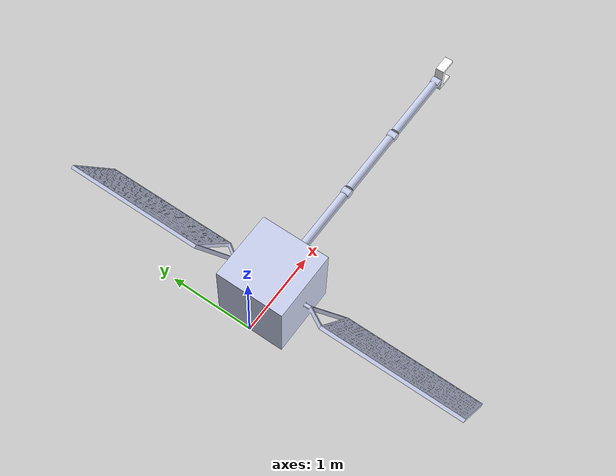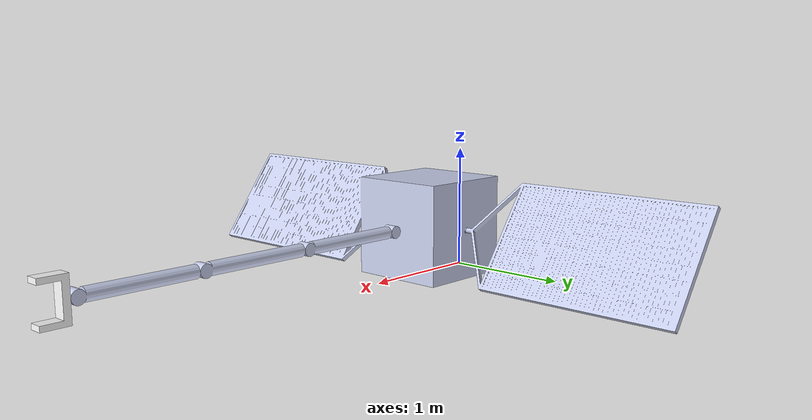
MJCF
<mujoco model="manipulator">
  <statistic meansize="0.491504" extent="5.68645" center="0.732312 0.400546 1.00736e-07"/>
  <asset>
    <mesh name="base_link" file="base_link.STL"/>
    <mesh name="link1" file="link1.STL"/>
    <mesh name="link2" file="link2.STL"/>
    <mesh name="link3" file="link3.STL"/>
    <mesh name="end_effector" file="end_effector.STL"/>
  </asset>
  <option gravity="0 0 0" timestep="0.0001" integrator="implicitfast"/>
  <worldbody>
    <light mode="targetbody" diffuse=".5 .5 .5" pos="0 0 3" dir="0 0 -1"/>
    <body pos="0 0 0" euler="90 0 0">
      <inertial pos="0.4 0.4 0" mass="580" diaginertia="71.085 69.68 58.927"/>
      <joint type="free"/>
      <geom type="mesh" rgba="0.79216 0.81961 0.93333 1" mesh="base_link"/>
      <body name="link1" pos="0.85 0.4 0" quat="1 0 0 0">
        <inertial pos="0.5 0 0" quat="0.5 0.5 0.5 0.5" mass="20" diaginertia="0.34018 0.34001 0.0089994"/>
        <joint name="joint1" pos="0 0 0" axis="0 0 1" range="-90 90"/>
        <geom type="mesh" rgba="0.79216 0.81961 0.93333 1" mesh="link1"/>
        <body name="link2" pos="0.9 0 0" quat="1 0 0 0">
          <inertial pos="0.5 0 0" quat="0.5 0.5 0.5 0.5" mass="20" diaginertia="0.34018 0.34001 0.0089994"/>
          <joint name="joint2" pos="0 0 0" axis="0 0 1" range="-90 90"/>
          <geom type="mesh" rgba="0.79216 0.81961 0.93333 1" mesh="link2"/>
          <body name="link3" pos="0.9 0 0" quat="1 0 0 0">
            <inertial pos="0.5 0 0" quat="0.5 0.5 0.5 0.5" mass="20" diaginertia="0.34018 0.34001 0.0089994"/>
            <joint name="joint3" pos="0 0 0" axis="0 0 1" range="-90 90"/>
            <geom type="mesh" rgba="0.79216 0.81961 0.93333 1" mesh="link3"/>
            <body name="end_effector" pos="0.9 0 0" quat="1 0 0 0">
              <inertial pos="0.11786 0 0" quat="0.5 0.5 -0.5 0.5" mass="5" diaginertia="0.046774 0.039667 0.011774"/>
              <joint name="joint4" pos="0 0 0" axis="0 0 1" range="-90 90"/>
              <geom type="mesh" rgba="1 1 1 1" mesh="end_effector"/>
            </body>
          </body>
        </body>
      </body>
    </body>
  </worldbody>

  <actuator>
    <general name="actuator1" joint="joint1" dyntype="user" actdim="2" gainprm="0" biastype="user"/>
    <general name="actuator2" joint="joint2" dyntype="user" actdim="2" gainprm="0" biastype="user"/>
    <general name="actuator3" joint="joint3" dyntype="user" actdim="2" gainprm="0" biastype="user"/>
    <general name="actuator4" joint="joint4" dyntype="user" actdim="2" gainprm="0" biastype="user"/>
  </actuator>

</mujoco>
